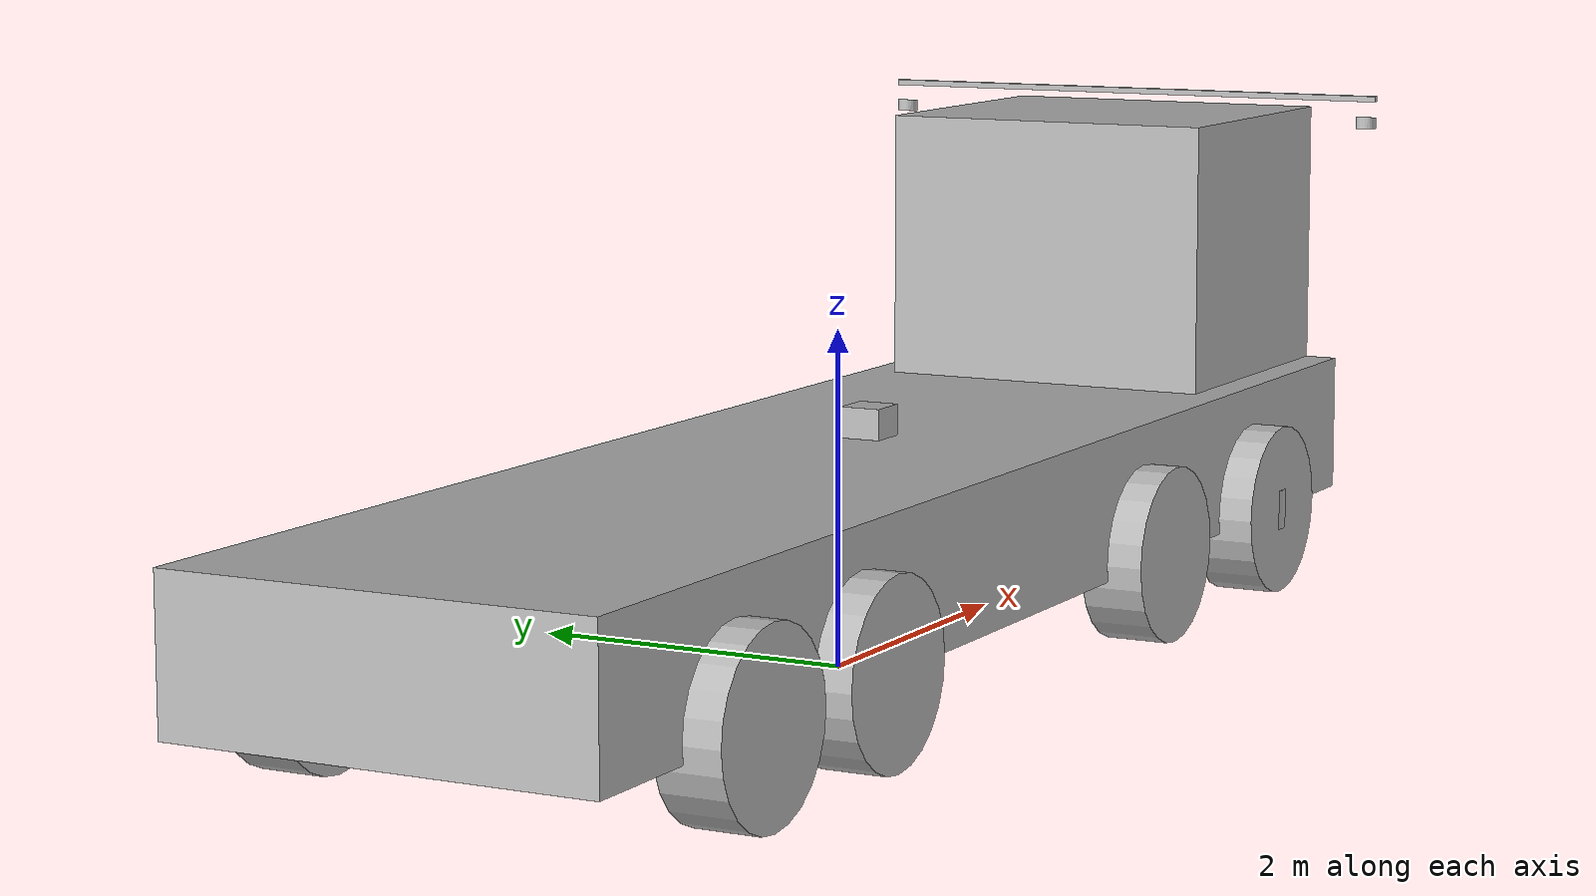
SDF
<sdf version='1.7'>
  <model name='arocs_truck'>
    <link name='base_footprint'>
      <inertial>
        <pose>0.969321 0 1.1213 0 -0 0</pose>
        <mass>1103.1</mass>
        <inertia>
          <ixx>1439.24</ixx>
          <ixy>8.63698e-13</ixy>
          <ixz>-1192.14</ixz>
          <iyy>8956.21</iyy>
          <iyz>3.5341e-28</iyz>
          <izz>9595.94</izz>
        </inertia>
      </inertial>
      <collision name='base_footprint_fixed_joint_lump__cabin_link_collision'>
        <pose>3.8205 0 2.095 0 -0 0</pose>
        <geometry>
          <box>
            <size>1.964 2.14 1.833</size>
          </box>
        </geometry>
      </collision>
      <collision name='base_footprint_fixed_joint_lump__bar_link_collision_1'>
        <pose>4.2225 0 3.122 0 -0 1.5708</pose>
        <geometry>
          <box>
            <size>3.478 0.04 0.035</size>
          </box>
        </geometry>
      </collision>
      <collision name='base_footprint_fixed_joint_lump__left_lidar_link_collision_2'>
        <pose>4.2225 1.674 2.9645 0.087266 -0 1.5708</pose>
        <geometry>
          <cylinder>
            <length>0.075</length>
            <radius>0.065</radius>
          </cylinder>
        </geometry>
        <surface>
          <contact>
            <ode/>
          </contact>
          <friction>
            <ode/>
          </friction>
        </surface>
      </collision>
      <collision name='base_footprint_fixed_joint_lump__right_lidar_link_collision_3'>
        <pose>4.2225 -1.674 2.9645 0.087266 -0 1.5708</pose>
        <geometry>
          <cylinder>
            <length>0.075</length>
            <radius>0.065</radius>
          </cylinder>
        </geometry>
        <surface>
          <contact>
            <ode/>
          </contact>
          <friction>
            <ode/>
          </friction>
        </surface>
      </collision>
      <collision name='base_footprint_fixed_joint_lump__first_shaft_horizontal_shaft_link_collision_4'>
        <pose>3.302 0 0.536 -1.5708 1.5708 0</pose>
        <geometry>
          <cylinder>
            <length>2.548</length>
            <radius>0.0536</radius>
          </cylinder>
        </geometry>
      </collision>
      <collision name='base_footprint_fixed_joint_lump__fourth_shaft_horizontal_shaft_link_collision_5'>
        <pose>-3.502 0 0.536 -1.5708 1.5708 0</pose>
        <geometry>
          <cylinder>
            <length>2.548</length>
            <radius>0.0536</radius>
          </cylinder>
        </geometry>
      </collision>
      <collision name='base_footprint_fixed_joint_lump__imu_link_collision_6'>
        <pose>0.4 0 1.377 0 -0 0</pose>
        <geometry>
          <box>
            <size>0.25 0.25 0.25</size>
          </box>
        </geometry>
        <surface>
          <contact>
            <ode/>
          </contact>
          <friction>
            <ode/>
          </friction>
        </surface>
      </collision>
      <collision name='base_footprint_fixed_joint_lump__second_shaft_horizontal_shaft_link_collision_7'>
        <pose>1.552 0 0.536 -1.5708 1.5708 0</pose>
        <geometry>
          <cylinder>
            <length>2.548</length>
            <radius>0.0536</radius>
          </cylinder>
        </geometry>
      </collision>
      <collision name='base_footprint_fixed_joint_lump__second_wheel_left_link_collision_8'>
        <pose>1.552 1.299 0.536 1.5708 -0 3.1408</pose>
        <geometry>
          <cylinder>
            <length>0.385</length>
            <radius>0.536</radius>
          </cylinder>
        </geometry>
      </collision>
      <collision name='base_footprint_fixed_joint_lump__second_wheel_right_link_collision_9'>
        <pose>1.552 -1.299 0.536 1.5708 -0 3.1408</pose>
        <geometry>
          <cylinder>
            <length>0.385</length>
            <radius>0.536</radius>
          </cylinder>
        </geometry>
      </collision>
      <collision name='base_footprint_fixed_joint_lump__third_shaft_horizontal_shaft_link_collision_10'>
        <pose>-2.152 0 0.536 -1.5708 1.5708 0</pose>
        <geometry>
          <cylinder>
            <length>2.548</length>
            <radius>0.0536</radius>
          </cylinder>
        </geometry>
      </collision>
      <collision name='base_footprint_fixed_joint_lump__third_wheel_left_link_collision_11'>
        <pose>-2.152 1.299 0.536 1.5708 -0 3.1408</pose>
        <geometry>
          <cylinder>
            <length>0.385</length>
            <radius>0.536</radius>
          </cylinder>
        </geometry>
      </collision>
      <collision name='base_footprint_fixed_joint_lump__third_wheel_right_link_collision_12'>
        <pose>-2.152 -1.299 0.536 1.5708 -0 3.1408</pose>
        <geometry>
          <cylinder>
            <length>0.385</length>
            <radius>0.536</radius>
          </cylinder>
        </geometry>
      </collision>
      <visual name='base_footprint_fixed_joint_lump__base_link_visual'>
        <pose>0 0 0.877 0 -0 0</pose>
        <geometry>
          <box>
            <size>9.605 2.548 0.877</size>
          </box>
        </geometry>
      </visual>
      <visual name='base_footprint_fixed_joint_lump__cabin_link_visual_1'>
        <pose>3.8205 0 2.095 0 -0 0</pose>
        <geometry>
          <box>
            <size>1.964 2.14 1.833</size>
          </box>
        </geometry>
      </visual>
      <visual name='base_footprint_fixed_joint_lump__bar_link_visual_2'>
        <pose>4.2225 0 3.122 0 -0 1.5708</pose>
        <geometry>
          <box>
            <size>3.478 0.04 0.035</size>
          </box>
        </geometry>
      </visual>
      <visual name='base_footprint_fixed_joint_lump__left_lidar_link_visual_3'>
        <pose>4.2225 1.674 2.9645 0.087266 -0 1.5708</pose>
        <geometry>
          <cylinder>
            <length>0.075</length>
            <radius>0.065</radius>
          </cylinder>
        </geometry>
      </visual>
      <visual name='base_footprint_fixed_joint_lump__right_lidar_link_visual_4'>
        <pose>4.2225 -1.674 2.9645 0.087266 -0 1.5708</pose>
        <geometry>
          <cylinder>
            <length>0.075</length>
            <radius>0.065</radius>
          </cylinder>
        </geometry>
      </visual>
      <visual name='base_footprint_fixed_joint_lump__first_shaft_horizontal_shaft_link_visual_5'>
        <pose>3.302 0 0.536 -1.5708 1.5708 0</pose>
        <geometry>
          <cylinder>
            <length>2.573</length>
            <radius>0.0536</radius>
          </cylinder>
        </geometry>
      </visual>
      <visual name='base_footprint_fixed_joint_lump__fourth_shaft_horizontal_shaft_link_visual_6'>
        <pose>-3.502 0 0.536 -1.5708 1.5708 0</pose>
        <geometry>
          <cylinder>
            <length>2.573</length>
            <radius>0.0536</radius>
          </cylinder>
        </geometry>
      </visual>
      <visual name='base_footprint_fixed_joint_lump__imu_link_visual_7'>
        <pose>0.4 0 1.377 0 -0 0</pose>
        <geometry>
          <box>
            <size>0.25 0.25 0.25</size>
          </box>
        </geometry>
      </visual>
      <visual name='base_footprint_fixed_joint_lump__second_shaft_horizontal_shaft_link_visual_8'>
        <pose>1.552 0 0.536 -1.5708 1.5708 0</pose>
        <geometry>
          <cylinder>
            <length>2.573</length>
            <radius>0.0536</radius>
          </cylinder>
        </geometry>
      </visual>
      <visual name='base_footprint_fixed_joint_lump__second_wheel_left_link_visual_9'>
        <pose>1.552 1.299 0.536 1.5708 -0 3.1408</pose>
        <geometry>
          <cylinder>
            <length>0.385</length>
            <radius>0.536</radius>
          </cylinder>
        </geometry>
      </visual>
      <visual name='base_footprint_fixed_joint_lump__second_wheel_right_link_visual_10'>
        <pose>1.552 -1.299 0.536 1.5708 -0 3.1408</pose>
        <geometry>
          <cylinder>
            <length>0.385</length>
            <radius>0.536</radius>
          </cylinder>
        </geometry>
      </visual>
      <visual name='base_footprint_fixed_joint_lump__third_shaft_horizontal_shaft_link_visual_11'>
        <pose>-2.152 0 0.536 -1.5708 1.5708 0</pose>
        <geometry>
          <cylinder>
            <length>2.573</length>
            <radius>0.0536</radius>
          </cylinder>
        </geometry>
      </visual>
      <visual name='base_footprint_fixed_joint_lump__third_wheel_left_link_visual_12'>
        <pose>-2.152 1.299 0.536 1.5708 -0 3.1408</pose>
        <geometry>
          <cylinder>
            <length>0.385</length>
            <radius>0.536</radius>
          </cylinder>
        </geometry>
      </visual>
      <visual name='base_footprint_fixed_joint_lump__third_wheel_right_link_visual_13'>
        <pose>-2.152 -1.299 0.536 1.5708 -0 3.1408</pose>
        <geometry>
          <cylinder>
            <length>0.385</length>
            <radius>0.536</radius>
          </cylinder>
        </geometry>
      </visual>
      <sensor name='left_lidar' type='ray'>
        <always_on>1</always_on>
        <visualize>1</visualize>
        <update_rate>5</update_rate>
        <ray>
          <scan>
            <horizontal>
              <samples>360</samples>
              <resolution>1</resolution>
              <min_angle>0</min_angle>
              <max_angle>6.28</max_angle>
            </horizontal>
          </scan>
          <range>
            <min>0.12</min>
            <max>100</max>
            <resolution>0.015</resolution>
          </range>
          <noise>
            <type>gaussian</type>
            <mean>0</mean>
            <stddev>0.01</stddev>
          </noise>
        </ray>
        <plugin name='scan' filename='libgazebo_ros_ray_sensor.so'>
          <ros>
            <remapping>~/out:=left_scan</remapping>
          </ros>
          <output_type>sensor_msgs/LaserScan</output_type>
          <frame_name>left_lidar_link</frame_name>
        </plugin>
        <pose>4.2225 1.674 2.9645 0.087266 -0 1.5708</pose>
      </sensor>
      <sensor name='right_lidar' type='ray'>
        <always_on>1</always_on>
        <visualize>1</visualize>
        <update_rate>5</update_rate>
        <ray>
          <scan>
            <horizontal>
              <samples>360</samples>
              <resolution>1</resolution>
              <min_angle>0</min_angle>
              <max_angle>6.28</max_angle>
            </horizontal>
          </scan>
          <range>
            <min>0.12</min>
            <max>100</max>
            <resolution>0.015</resolution>
          </range>
          <noise>
            <type>gaussian</type>
            <mean>0</mean>
            <stddev>0.01</stddev>
          </noise>
        </ray>
        <plugin name='scan' filename='libgazebo_ros_ray_sensor.so'>
          <ros>
            <remapping>~/out:=right_scan</remapping>
          </ros>
          <output_type>sensor_msgs/LaserScan</output_type>
          <frame_name>right_lidar_link</frame_name>
        </plugin>
        <pose>4.2225 -1.674 2.9645 0.087266 -0 1.5708</pose>
      </sensor>
      <sensor name='imu_sensor' type='imu'>
        <plugin name='imu_plugin' filename='libgazebo_ros_imu_sensor.so'>
          <ros>
            <remapping>~/out:=imu</remapping>
          </ros>
          <initial_orientation_as_reference>0</initial_orientation_as_reference>
        </plugin>
        <always_on>1</always_on>
        <update_rate>200</update_rate>
        <visualize>1</visualize>
        <imu>
          <angular_velocity>
            <x>
              <noise type='gaussian'>
                <mean>0</mean>
                <stddev>0.0002</stddev>
                <bias_mean>7.5e-06</bias_mean>
                <bias_stddev>8e-07</bias_stddev>
              </noise>
            </x>
            <y>
              <noise type='gaussian'>
                <mean>0</mean>
                <stddev>0.0002</stddev>
                <bias_mean>7.5e-06</bias_mean>
                <bias_stddev>8e-07</bias_stddev>
              </noise>
            </y>
            <z>
              <noise type='gaussian'>
                <mean>0</mean>
                <stddev>0.0002</stddev>
                <bias_mean>7.5e-06</bias_mean>
                <bias_stddev>8e-07</bias_stddev>
              </noise>
            </z>
          </angular_velocity>
          <linear_acceleration>
            <x>
              <noise type='gaussian'>
                <mean>0</mean>
                <stddev>0.017</stddev>
                <bias_mean>0.1</bias_mean>
                <bias_stddev>0.001</bias_stddev>
              </noise>
            </x>
            <y>
              <noise type='gaussian'>
                <mean>0</mean>
                <stddev>0.017</stddev>
                <bias_mean>0.1</bias_mean>
                <bias_stddev>0.001</bias_stddev>
              </noise>
            </y>
            <z>
              <noise type='gaussian'>
                <mean>0</mean>
                <stddev>0.017</stddev>
                <bias_mean>0.1</bias_mean>
                <bias_stddev>0.001</bias_stddev>
              </noise>
            </z>
          </linear_acceleration>
        </imu>
        <pose>0.4 0 1.377 0 -0 0</pose>
      </sensor>
    </link>
    <joint name='front_left_steer_joint' type='revolute'>
      <pose relative_to='base_footprint'>3.302 1.299 0.535 0 -0 1.5708</pose>
      <parent>base_footprint</parent>
      <child>front_left_steering_link</child>
      <axis>
        <xyz>0 0 1</xyz>
        <limit>
          <lower>-0.524</lower>
          <upper>0.524</upper>
          <effort>1e+07</effort>
          <velocity>1e+06</velocity>
        </limit>
        <dynamics>
          <spring_reference>0</spring_reference>
          <spring_stiffness>0</spring_stiffness>
        </dynamics>
      </axis>
    </joint>
    <link name='front_left_steering_link'>
      <pose relative_to='front_left_steer_joint'>0 0 0 0 -0 0</pose>
      <inertial>
        <pose>0 0 0 0 -0 0</pose>
        <mass>2</mass>
        <inertia>
          <ixx>0.0304167</ixx>
          <ixy>0</ixy>
          <ixz>0</ixz>
          <iyy>0.0304167</iyy>
          <iyz>0</iyz>
          <izz>0.04</izz>
        </inertia>
      </inertial>
      <collision name='front_left_steering_link_collision'>
        <pose>0 0 0 0 -0 0</pose>
        <geometry>
          <cylinder>
            <length>0.25</length>
            <radius>0.2</radius>
          </cylinder>
        </geometry>
      </collision>
      <visual name='front_left_steering_link_visual'>
        <pose>0 0 0 0 -0 0</pose>
        <geometry>
          <cylinder>
            <length>0.25</length>
            <radius>0.2</radius>
          </cylinder>
        </geometry>
      </visual>
    </link>
    <joint name='first_wheel_left_joint' type='revolute'>
      <pose relative_to='front_left_steering_link'>0 0 0 0 -0 1.57</pose>
      <parent>front_left_steering_link</parent>
      <child>first_wheel_left_link</child>
      <axis>
        <xyz>0 -1 0</xyz>
        <limit>
          <lower>-1e+16</lower>
          <upper>1e+16</upper>
        </limit>
        <dynamics>
          <spring_reference>0</spring_reference>
          <spring_stiffness>0</spring_stiffness>
        </dynamics>
      </axis>
    </joint>
    <link name='first_wheel_left_link'>
      <pose relative_to='first_wheel_left_joint'>0 0 0 0 -0 0</pose>
      <inertial>
        <pose>0 0 0 0 -0 0</pose>
        <mass>74</mass>
        <inertia>
          <ixx>0.5</ixx>
          <ixy>0</ixy>
          <ixz>0</ixz>
          <iyy>0.5</iyy>
          <iyz>0</iyz>
          <izz>74</izz>
        </inertia>
      </inertial>
      <collision name='first_wheel_left_link_collision'>
        <pose>0 0 0 1.5708 -0 0</pose>
        <geometry>
          <cylinder>
            <length>0.385</length>
            <radius>0.536</radius>
          </cylinder>
        </geometry>
      </collision>
      <visual name='first_wheel_left_link_visual'>
        <pose>0 0 0 1.5708 -0 0</pose>
        <geometry>
          <cylinder>
            <length>0.385</length>
            <radius>0.536</radius>
          </cylinder>
        </geometry>
      </visual>
    </link>
    <joint name='front_right_steer_joint' type='revolute'>
      <pose relative_to='base_footprint'>3.302 -1.299 0.535 0 -0 1.5708</pose>
      <parent>base_footprint</parent>
      <child>front_right_steering_link</child>
      <axis>
        <xyz>0 0 1</xyz>
        <limit>
          <lower>-0.524</lower>
          <upper>0.524</upper>
          <effort>1e+07</effort>
          <velocity>1e+06</velocity>
        </limit>
        <dynamics>
          <spring_reference>0</spring_reference>
          <spring_stiffness>0</spring_stiffness>
        </dynamics>
      </axis>
    </joint>
    <link name='front_right_steering_link'>
      <pose relative_to='front_right_steer_joint'>0 0 0 0 -0 0</pose>
      <inertial>
        <pose>0 0 0 0 -0 0</pose>
        <mass>2</mass>
        <inertia>
          <ixx>0.0304167</ixx>
          <ixy>0</ixy>
          <ixz>0</ixz>
          <iyy>0.0304167</iyy>
          <iyz>0</iyz>
          <izz>0.04</izz>
        </inertia>
      </inertial>
      <collision name='front_right_steering_link_collision'>
        <pose>0 0 0 0 -0 0</pose>
        <geometry>
          <cylinder>
            <length>0.25</length>
            <radius>0.2</radius>
          </cylinder>
        </geometry>
      </collision>
      <visual name='front_right_steering_link_visual'>
        <pose>0 0 0 0 -0 0</pose>
        <geometry>
          <cylinder>
            <length>0.25</length>
            <radius>0.2</radius>
          </cylinder>
        </geometry>
      </visual>
    </link>
    <joint name='first_wheel_right_joint' type='revolute'>
      <pose relative_to='front_right_steering_link'>0 0 0 0 -0 1.57</pose>
      <parent>front_right_steering_link</parent>
      <child>first_wheel_right_link</child>
      <axis>
        <xyz>0 -1 0</xyz>
        <limit>
          <lower>-1e+16</lower>
          <upper>1e+16</upper>
        </limit>
        <dynamics>
          <spring_reference>0</spring_reference>
          <spring_stiffness>0</spring_stiffness>
        </dynamics>
      </axis>
    </joint>
    <link name='first_wheel_right_link'>
      <pose relative_to='first_wheel_right_joint'>0 0 0 0 -0 0</pose>
      <inertial>
        <pose>0 0 0 0 -0 0</pose>
        <mass>74</mass>
        <inertia>
          <ixx>0.5</ixx>
          <ixy>0</ixy>
          <ixz>0</ixz>
          <iyy>0.5</iyy>
          <iyz>0</iyz>
          <izz>74</izz>
        </inertia>
      </inertial>
      <collision name='first_wheel_right_link_collision'>
        <pose>0 0 0 1.5708 -0 0</pose>
        <geometry>
          <cylinder>
            <length>0.385</length>
            <radius>0.536</radius>
          </cylinder>
        </geometry>
      </collision>
      <visual name='first_wheel_right_link_visual'>
        <pose>0 0 0 1.5708 -0 0</pose>
        <geometry>
          <cylinder>
            <length>0.385</length>
            <radius>0.536</radius>
          </cylinder>
        </geometry>
      </visual>
    </link>
    <joint name='fourth_wheel_left_joint' type='revolute'>
      <pose relative_to='base_footprint'>-3.502 1.299 0.536 0 -0 3.1408</pose>
      <parent>base_footprint</parent>
      <child>fourth_wheel_left_link</child>
      <axis>
        <xyz>0 -1 0</xyz>
        <limit>
          <lower>-1e+16</lower>
          <upper>1e+16</upper>
        </limit>
        <dynamics>
          <spring_reference>0</spring_reference>
          <spring_stiffness>0</spring_stiffness>
        </dynamics>
      </axis>
    </joint>
    <link name='fourth_wheel_left_link'>
      <pose relative_to='fourth_wheel_left_joint'>0 0 0 0 -0 0</pose>
      <inertial>
        <pose>0 0 0 0 -0 0</pose>
        <mass>74</mass>
        <inertia>
          <ixx>0.5</ixx>
          <ixy>0</ixy>
          <ixz>0</ixz>
          <iyy>0.5</iyy>
          <iyz>0</iyz>
          <izz>74</izz>
        </inertia>
      </inertial>
      <collision name='fourth_wheel_left_link_collision'>
        <pose>0 0 0 1.5708 -0 0</pose>
        <geometry>
          <cylinder>
            <length>0.385</length>
            <radius>0.536</radius>
          </cylinder>
        </geometry>
      </collision>
      <visual name='fourth_wheel_left_link_visual'>
        <pose>0 0 0 1.5708 -0 0</pose>
        <geometry>
          <cylinder>
            <length>0.385</length>
            <radius>0.536</radius>
          </cylinder>
        </geometry>
      </visual>
    </link>
    <joint name='fourth_wheel_right_joint' type='revolute'>
      <pose relative_to='base_footprint'>-3.502 -1.299 0.536 0 -0 3.1408</pose>
      <parent>base_footprint</parent>
      <child>fourth_wheel_right_link</child>
      <axis>
        <xyz>0 -1 0</xyz>
        <limit>
          <lower>-1e+16</lower>
          <upper>1e+16</upper>
        </limit>
        <dynamics>
          <spring_reference>0</spring_reference>
          <spring_stiffness>0</spring_stiffness>
        </dynamics>
      </axis>
    </joint>
    <link name='fourth_wheel_right_link'>
      <pose relative_to='fourth_wheel_right_joint'>0 0 0 0 -0 0</pose>
      <inertial>
        <pose>0 0 0 0 -0 0</pose>
        <mass>74</mass>
        <inertia>
          <ixx>0.5</ixx>
          <ixy>0</ixy>
          <ixz>0</ixz>
          <iyy>0.5</iyy>
          <iyz>0</iyz>
          <izz>74</izz>
        </inertia>
      </inertial>
      <collision name='fourth_wheel_right_link_collision'>
        <pose>0 0 0 1.5708 -0 0</pose>
        <geometry>
          <cylinder>
            <length>0.385</length>
            <radius>0.536</radius>
          </cylinder>
        </geometry>
      </collision>
      <visual name='fourth_wheel_right_link_visual'>
        <pose>0 0 0 1.5708 -0 0</pose>
        <geometry>
          <cylinder>
            <length>0.385</length>
            <radius>0.536</radius>
          </cylinder>
        </geometry>
      </visual>
    </link>
    <plugin name='ackermann_drive' filename='libgazebo_ros_ackermann_drive.so'>
      <ros>
        <parameter name='cmd_vel_topic' value='cmd_vel'/>
        <parameter name='odom_topic' value='odom'/>
        <parameter name='distance_topic' value='distance'/>
      </ros>
      <update_rate>30.0</update_rate>
      <front_left_joint>first_wheel_left_joint</front_left_joint>
      <front_right_joint>first_wheel_right_joint</front_right_joint>
      <rear_left_joint>fourth_wheel_left_joint</rear_left_joint>
      <rear_right_joint>fourth_wheel_right_joint</rear_right_joint>
      <left_steering_joint>front_left_steer_joint</left_steering_joint>
      <right_steering_joint>front_right_steer_joint</right_steering_joint>
      <max_steer>0.6458</max_steer>
      <max_steering_angle>7.85</max_steering_angle>
      <max_speed>20</max_speed>
      <left_steering_pid_gain>1500 0 1</left_steering_pid_gain>
      <left_steering_i_range>0 0</left_steering_i_range>
      <right_steering_pid_gain>1500 0 1</right_steering_pid_gain>
      <right_steering_i_range>0 0</right_steering_i_range>
      <linear_velocity_pid_gain>1000 0 1</linear_velocity_pid_gain>
      <linear_velocity_i_range>0 0</linear_velocity_i_range>
      <publish_odom>1</publish_odom>
      <publish_odom_tf>1</publish_odom_tf>
      <publish_wheel_tf>1</publish_wheel_tf>
      <publish_distance>1</publish_distance>
      <odometry_frame>odom</odometry_frame>
      <robot_base_frame>base_footprint</robot_base_frame>
    </plugin>
    <plugin name='truck_joint_state' filename='libgazebo_ros_joint_state_publisher.so'>
      <ros>
        <remapping>~/out:=joint_states</remapping>
      </ros>
      <update_rate>30</update_rate>
      <joint_name>front_right_steer_joint</joint_name>
      <joint_name>front_left_steer_joint</joint_name>
      <joint_name>first_wheel_left_joint</joint_name>
      <joint_name>first_wheel_right_joint</joint_name>
      <joint_name>fourth_wheel_left_joint</joint_name>
      <joint_name>fourth_wheel_right_joint</joint_name>
    </plugin>
    <frame name='left_lidar_to_support_link' attached_to='bar_link'>
      <pose>1.674 0 -0.1575 0.087266 -0 0</pose>
    </frame>
    <frame name='left_lidar_link' attached_to='left_lidar_to_support_link'/>
    <frame name='lidar_to_support_link' attached_to='bar_link'>
      <pose>-1.674 0 -0.1575 0.087266 -0 0</pose>
    </frame>
    <frame name='right_lidar_link' attached_to='lidar_to_support_link'/>
    <frame name='bar_to_cabin_joint' attached_to='cabin_link'>
      <pose>0.402 0 1.027 0 -0 1.5708</pose>
    </frame>
    <frame name='bar_link' attached_to='bar_to_cabin_joint'/>
    <frame name='cabin_joint' attached_to='base_link'>
      <pose>3.8205 0 1.218 0 -0 0</pose>
    </frame>
    <frame name='cabin_link' attached_to='cabin_joint'/>
    <frame name='first_shaft_horizontal_shaft_joint' attached_to='base_link'>
      <pose>3.302 0 -0.341 0 -0 1.5708</pose>
    </frame>
    <frame name='first_shaft_horizontal_shaft_link' attached_to='first_shaft_horizontal_shaft_joint'/>
    <frame name='fourth_shaft_horizontal_shaft_joint' attached_to='base_link'>
      <pose>-3.502 0 -0.341 0 -0 1.5708</pose>
    </frame>
    <frame name='fourth_shaft_horizontal_shaft_link' attached_to='fourth_shaft_horizontal_shaft_joint'/>
    <frame name='imu_joint' attached_to='base_link'>
      <pose>0.4 0 0.5 0 -0 0</pose>
    </frame>
    <frame name='imu_link' attached_to='imu_joint'/>
    <frame name='second_wheel_left_joint' attached_to='second_shaft_horizontal_shaft_link'>
      <pose>1.299 0 0 0 -0 1.57</pose>
    </frame>
    <frame name='second_wheel_left_link' attached_to='second_wheel_left_joint'/>
    <frame name='second_wheel_right_joint' attached_to='second_shaft_horizontal_shaft_link'>
      <pose>-1.299 0 0 0 -0 1.57</pose>
    </frame>
    <frame name='second_wheel_right_link' attached_to='second_wheel_right_joint'/>
    <frame name='second_shaft_horizontal_shaft_joint' attached_to='base_link'>
      <pose>1.552 0 -0.341 0 -0 1.5708</pose>
    </frame>
    <frame name='second_shaft_horizontal_shaft_link' attached_to='second_shaft_horizontal_shaft_joint'/>
    <frame name='third_wheel_left_joint' attached_to='third_shaft_horizontal_shaft_link'>
      <pose>1.299 0 0 0 -0 1.57</pose>
    </frame>
    <frame name='third_wheel_left_link' attached_to='third_wheel_left_joint'/>
    <frame name='third_wheel_right_joint' attached_to='third_shaft_horizontal_shaft_link'>
      <pose>-1.299 0 0 0 -0 1.57</pose>
    </frame>
    <frame name='third_wheel_right_link' attached_to='third_wheel_right_joint'/>
    <frame name='third_shaft_horizontal_shaft_joint' attached_to='base_link'>
      <pose>-2.152 0 -0.341 0 -0 1.5708</pose>
    </frame>
    <frame name='third_shaft_horizontal_shaft_link' attached_to='third_shaft_horizontal_shaft_joint'/>
    <frame name='base_joint' attached_to='base_footprint'>
      <pose>0 0 0.877 0 -0 0</pose>
    </frame>
    <frame name='base_link' attached_to='base_joint'/>
  </model>
</sdf>
